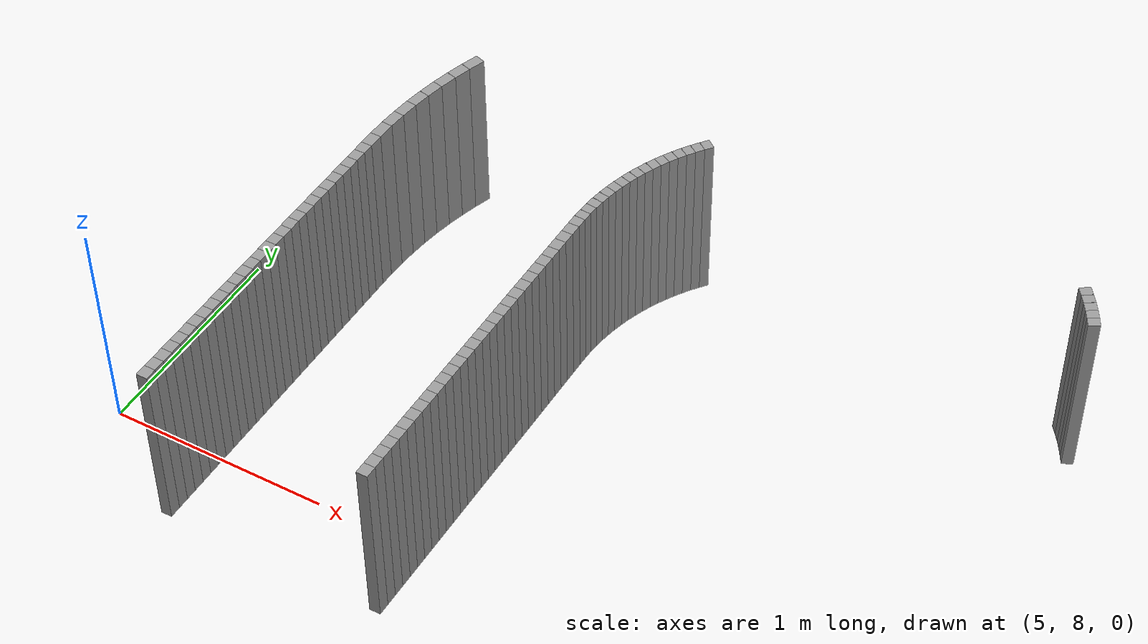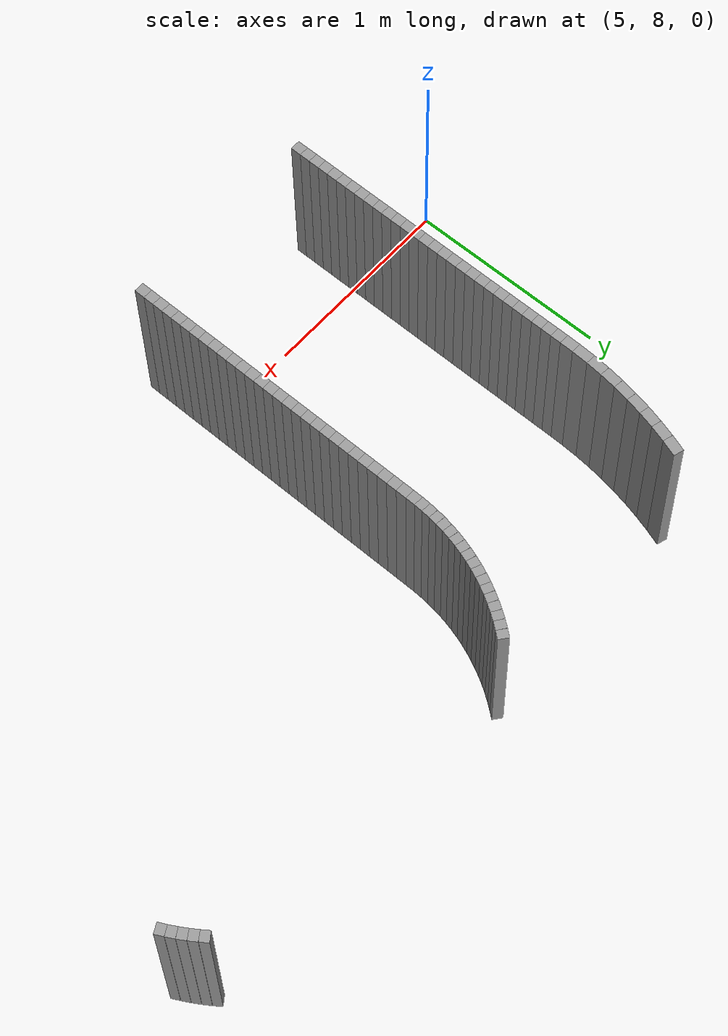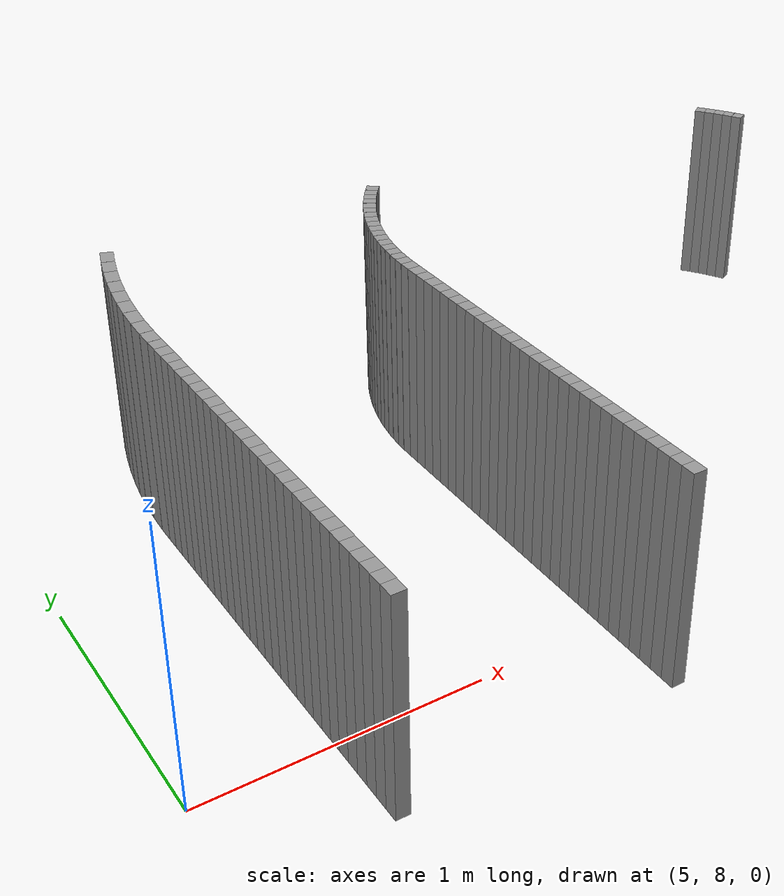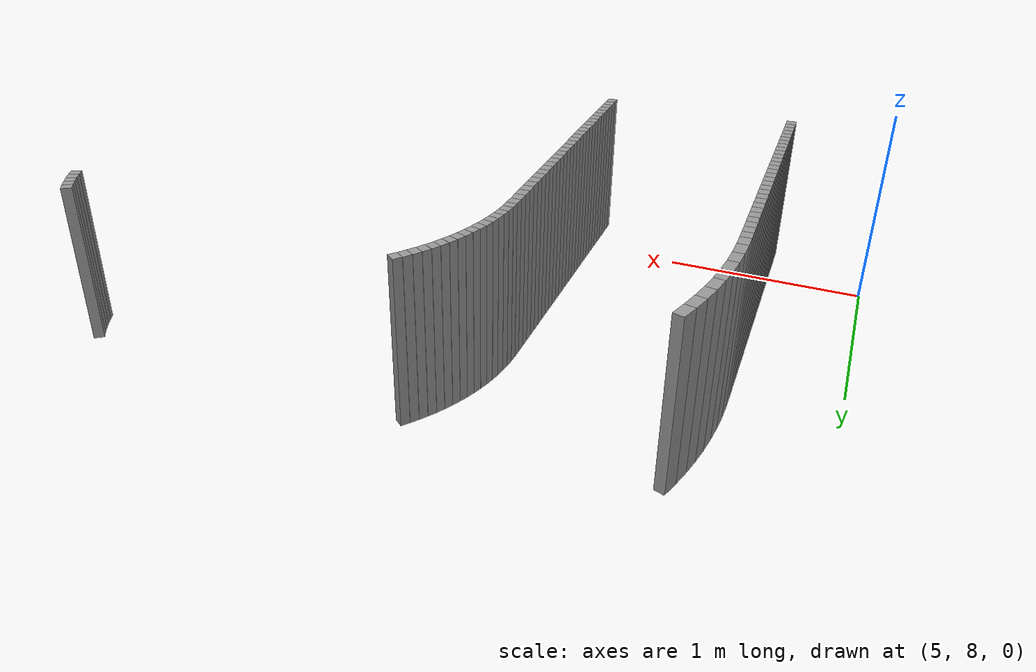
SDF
<sdf version="1.6">
 <model name="path_walls">
  <static>true</static>
  <model name="wall_left_228">
   <static>true</static>
   <pose>8.529585507723153 9.71877326772793 0.40 0 0 2.0480002741756937</pose>
   <link name="wall_link">
    <visual name="wall_visual">
     <geometry><box><size>0.042737418120576395 0.05 0.8</size></box></geometry>
     <material><ambient>0.3 0.3 0.3 1</ambient><diffuse>0.6 0.6 0.6 1</diffuse></material>
    </visual>
    <collision name="wall_collision">
     <geometry><box><size>0.042737418120576395 0.05 0.8</size></box></geometry>
    </collision>
   </link>
  </model>
  <model name="wall_left_229">
   <static>true</static>
   <pose>8.509209450462738 9.75633097246778 0.40 0 0 2.087767269790649</pose>
   <link name="wall_link">
    <visual name="wall_visual">
     <geometry><box><size>0.04273741812055642 0.05 0.8</size></box></geometry>
     <material><ambient>0.3 0.3 0.3 1</ambient><diffuse>0.6 0.6 0.6 1</diffuse></material>
    </visual>
    <collision name="wall_collision">
     <geometry><box><size>0.04273741812055642 0.05 0.8</size></box></geometry>
    </collision>
   </link>
  </model>
  <model name="wall_left_230">
   <static>true</static>
   <pose>8.487356339114202 9.793048902954027 0.40 0 0 2.1275342654057545</pose>
   <link name="wall_link">
    <visual name="wall_visual">
     <geometry><box><size>0.04273741812055286 0.05 0.8</size></box></geometry>
     <material><ambient>0.3 0.3 0.3 1</ambient><diffuse>0.6 0.6 0.6 1</diffuse></material>
    </visual>
    <collision name="wall_collision">
     <geometry><box><size>0.04273741812055286 0.05 0.8</size></box></geometry>
    </collision>
   </link>
  </model>
  <model name="wall_left_231">
   <static>true</static>
   <pose>8.464060727938387 9.828869000591375 0.40 0 0 2.1673012610208104</pose>
   <link name="wall_link">
    <visual name="wall_visual">
     <geometry><box><size>0.04273741812054675 0.05 0.8</size></box></geometry>
     <material><ambient>0.3 0.3 0.3 1</ambient><diffuse>0.6 0.6 0.6 1</diffuse></material>
    </visual>
    <collision name="wall_collision">
     <geometry><box><size>0.04273741812054675 0.05 0.8</size></box></geometry>
    </collision>
   </link>
  </model>
  <model name="wall_left_232">
   <static>true</static>
   <pose>8.439359452084862 9.863734626442819 0.40 0 0 2.207068256635829</pose>
   <link name="wall_link">
    <visual name="wall_visual">
     <geometry><box><size>0.04273741812057202 0.05 0.8</size></box></geometry>
     <material><ambient>0.3 0.3 0.3 1</ambient><diffuse>0.6 0.6 0.6 1</diffuse></material>
    </visual>
    <collision name="wall_collision">
     <geometry><box><size>0.04273741812057202 0.05 0.8</size></box></geometry>
    </collision>
   </link>
  </model>
  <model name="wall_left_278">
   <static>true</static>
   <pose>6.736864103651067 9.89759065078741 0.40 0 0 -2.246835252250915</pose>
   <link name="wall_link">
    <visual name="wall_visual">
     <geometry><box><size>0.04273741812054569 0.05 0.8</size></box></geometry>
     <material><ambient>0.3 0.3 0.3 1</ambient><diffuse>0.6 0.6 0.6 1</diffuse></material>
    </visual>
    <collision name="wall_collision">
     <geometry><box><size>0.04273741812054569 0.05 0.8</size></box></geometry>
    </collision>
   </link>
  </model>
  <model name="wall_left_279">
   <static>true</static>
   <pose>6.710796220914193 9.86373462644282 0.40 0 0 -2.207068256635847</pose>
   <link name="wall_link">
    <visual name="wall_visual">
     <geometry><box><size>0.04273741812057698 0.05 0.8</size></box></geometry>
     <material><ambient>0.3 0.3 0.3 1</ambient><diffuse>0.6 0.6 0.6 1</diffuse></material>
    </visual>
    <collision name="wall_collision">
     <geometry><box><size>0.04273741812057698 0.05 0.8</size></box></geometry>
    </collision>
   </link>
  </model>
  <model name="wall_left_280">
   <static>true</static>
   <pose>6.686094945060668 9.828869000591379 0.40 0 0 -2.1673012610208118</pose>
   <link name="wall_link">
    <visual name="wall_visual">
     <geometry><box><size>0.04273741812054035 0.05 0.8</size></box></geometry>
     <material><ambient>0.3 0.3 0.3 1</ambient><diffuse>0.6 0.6 0.6 1</diffuse></material>
    </visual>
    <collision name="wall_collision">
     <geometry><box><size>0.04273741812054035 0.05 0.8</size></box></geometry>
    </collision>
   </link>
  </model>
  <model name="wall_left_281">
   <static>true</static>
   <pose>6.662799333884852 9.793048902954027 0.40 0 0 -2.1275342654057465</pose>
   <link name="wall_link">
    <visual name="wall_visual">
     <geometry><box><size>0.042737418120565196 0.05 0.8</size></box></geometry>
     <material><ambient>0.3 0.3 0.3 1</ambient><diffuse>0.6 0.6 0.6 1</diffuse></material>
    </visual>
    <collision name="wall_collision">
     <geometry><box><size>0.042737418120565196 0.05 0.8</size></box></geometry>
    </collision>
   </link>
  </model>
  <model name="wall_left_282">
   <static>true</static>
   <pose>6.6409462225363125 9.756330972467776 0.40 0 0 -2.087767269790674</pose>
   <link name="wall_link">
    <visual name="wall_visual">
     <geometry><box><size>0.04273741812055091 0.05 0.8</size></box></geometry>
     <material><ambient>0.3 0.3 0.3 1</ambient><diffuse>0.6 0.6 0.6 1</diffuse></material>
    </visual>
    <collision name="wall_collision">
     <geometry><box><size>0.04273741812055091 0.05 0.8</size></box></geometry>
    </collision>
   </link>
  </model>
  <model name="wall_left_283">
   <static>true</static>
   <pose>6.620570165275902 9.718773267727936 0.40 0 0 -2.0480002741756422</pose>
   <link name="wall_link">
    <visual name="wall_visual">
     <geometry><box><size>0.04273741812056326 0.05 0.8</size></box></geometry>
     <material><ambient>0.3 0.3 0.3 1</ambient><diffuse>0.6 0.6 0.6 1</diffuse></material>
    </visual>
    <collision name="wall_collision">
     <geometry><box><size>0.04273741812056326 0.05 0.8</size></box></geometry>
    </collision>
   </link>
  </model>
  <model name="wall_left_284">
   <static>true</static>
   <pose>6.601703380838353 9.680435175185508 0.40 0 0 -2.008233278560592</pose>
   <link name="wall_link">
    <visual name="wall_visual">
     <geometry><box><size>0.04273741812055495 0.05 0.8</size></box></geometry>
     <material><ambient>0.3 0.3 0.3 1</ambient><diffuse>0.6 0.6 0.6 1</diffuse></material>
    </visual>
    <collision name="wall_collision">
     <geometry><box><size>0.04273741812055495 0.05 0.8</size></box></geometry>
    </collision>
   </link>
  </model>
  <model name="wall_left_285">
   <static>true</static>
   <pose>6.5843757014878435 9.641377315245023 0.40 0 0 -1.9684662829454904</pose>
   <link name="wall_link">
    <visual name="wall_visual">
     <geometry><box><size>0.04273741812055926 0.05 0.8</size></box></geometry>
     <material><ambient>0.3 0.3 0.3 1</ambient><diffuse>0.6 0.6 0.6 1</diffuse></material>
    </visual>
    <collision name="wall_collision">
     <geometry><box><size>0.04273741812055926 0.05 0.8</size></box></geometry>
    </collision>
   </link>
  </model>
  <model name="wall_left_286">
   <static>true</static>
   <pose>6.568614525847053 9.601661446411216 0.40 0 0 -1.9286992873304307</pose>
   <link name="wall_link">
    <visual name="wall_visual">
     <geometry><box><size>0.04273741812054045 0.05 0.8</size></box></geometry>
     <material><ambient>0.3 0.3 0.3 1</ambient><diffuse>0.6 0.6 0.6 1</diffuse></material>
    </visual>
    <collision name="wall_collision">
     <geometry><box><size>0.04273741812054045 0.05 0.8</size></box></geometry>
    </collision>
   </link>
  </model>
  <model name="wall_left_287">
   <static>true</static>
   <pose>6.554444775574304 9.561350367636116 0.40 0 0 -1.8889322917153735</pose>
   <link name="wall_link">
    <visual name="wall_visual">
     <geometry><box><size>0.04273741812056799 0.05 0.8</size></box></geometry>
     <material><ambient>0.3 0.3 0.3 1</ambient><diffuse>0.6 0.6 0.6 1</diffuse></material>
    </visual>
    <collision name="wall_collision">
     <geometry><box><size>0.04273741812056799 0.05 0.8</size></box></geometry>
    </collision>
   </link>
  </model>
  <model name="wall_left_288">
   <static>true</static>
   <pose>6.5418888559573 9.52050781902102 0.40 0 0 -1.849165296100335</pose>
   <link name="wall_link">
    <visual name="wall_visual">
     <geometry><box><size>0.042737418120560755 0.05 0.8</size></box></geometry>
     <material><ambient>0.3 0.3 0.3 1</ambient><diffuse>0.6 0.6 0.6 1</diffuse></material>
    </visual>
    <collision name="wall_collision">
     <geometry><box><size>0.042737418120560755 0.05 0.8</size></box></geometry>
    </collision>
   </link>
  </model>
  <model name="wall_left_289">
   <static>true</static>
   <pose>6.530966620485776 9.479198381030303 0.40 0 0 -1.8093983004852403</pose>
   <link name="wall_link">
    <visual name="wall_visual">
     <geometry><box><size>0.042737418120546496 0.05 0.8</size></box></geometry>
     <material><ambient>0.3 0.3 0.3 1</ambient><diffuse>0.6 0.6 0.6 1</diffuse></material>
    </visual>
    <collision name="wall_collision">
     <geometry><box><size>0.042737418120546496 0.05 0.8</size></box></geometry>
    </collision>
   </link>
  </model>
  <model name="wall_left_290">
   <static>true</static>
   <pose>6.521695339459022 9.437487372376381 0.40 0 0 -1.7696313048701957</pose>
   <link name="wall_link">
    <visual name="wall_visual">
     <geometry><box><size>0.042737418120566535 0.05 0.8</size></box></geometry>
     <material><ambient>0.3 0.3 0.3 1</ambient><diffuse>0.6 0.6 0.6 1</diffuse></material>
    </visual>
    <collision name="wall_collision">
     <geometry><box><size>0.042737418120566535 0.05 0.8</size></box></geometry>
    </collision>
   </link>
  </model>
  <model name="wall_left_291">
   <static>true</static>
   <pose>6.514089672678011 9.395440746737448 0.40 0 0 -1.7298643092551451</pose>
   <link name="wall_link">
    <visual name="wall_visual">
     <geometry><box><size>0.042737418120542846 0.05 0.8</size></box></geometry>
     <material><ambient>0.3 0.3 0.3 1</ambient><diffuse>0.6 0.6 0.6 1</diffuse></material>
    </visual>
    <collision name="wall_collision">
     <geometry><box><size>0.042737418120542846 0.05 0.8</size></box></geometry>
    </collision>
   </link>
  </model>
  <model name="wall_left_292">
   <static>true</static>
   <pose>6.508161646265236 9.353124988471126 0.40 0 0 -1.690097313640075</pose>
   <link name="wall_link">
    <visual name="wall_visual">
     <geometry><box><size>0.042737418120566015 0.05 0.8</size></box></geometry>
     <material><ambient>0.3 0.3 0.3 1</ambient><diffuse>0.6 0.6 0.6 1</diffuse></material>
    </visual>
    <collision name="wall_collision">
     <geometry><box><size>0.042737418120566015 0.05 0.8</size></box></geometry>
    </collision>
   </link>
  </model>
  <model name="wall_left_293">
   <static>true</static>
   <pose>6.5039206336489315 9.310607007489036 0.40 0 0 -1.650330318025032</pose>
   <link name="wall_link">
    <visual name="wall_visual">
     <geometry><box><size>0.042737418120559006 0.05 0.8</size></box></geometry>
     <material><ambient>0.3 0.3 0.3 1</ambient><diffuse>0.6 0.6 0.6 1</diffuse></material>
    </visual>
    <collision name="wall_collision">
     <geometry><box><size>0.042737418120559006 0.05 0.8</size></box></geometry>
    </collision>
   </link>
  </model>
  <model name="wall_left_294">
   <static>true</static>
   <pose>6.5013733407417655 9.267954033458503 0.40 0 0 -1.6105633224099325</pose>
   <link name="wall_link">
    <visual name="wall_visual">
     <geometry><box><size>0.042737418120544685 0.05 0.8</size></box></geometry>
     <material><ambient>0.3 0.3 0.3 1</ambient><diffuse>0.6 0.6 0.6 1</diffuse></material>
    </visual>
    <collision name="wall_collision">
     <geometry><box><size>0.042737418120544685 0.05 0.8</size></box></geometry>
    </collision>
   </link>
  </model>
  <model name="wall_left_295">
   <static>true</static>
   <pose>6.500261897668705 9.222569746770251 0.40 0 0 -1.5816935538542747</pose>
   <link name="wall_link">
    <visual name="wall_visual">
     <geometry><box><size>0.048067797563828306 0.05 0.8</size></box></geometry>
     <material><ambient>0.3 0.3 0.3 1</ambient><diffuse>0.6 0.6 0.6 1</diffuse></material>
    </visual>
    <collision name="wall_collision">
     <geometry><box><size>0.048067797563828306 0.05 0.8</size></box></geometry>
    </collision>
   </link>
  </model>
  <model name="wall_left_296">
   <static>true</static>
   <pose>6.5 9.171841040464699 0.40 0 0 -1.5707963267948966</pose>
   <link name="wall_link">
    <visual name="wall_visual">
     <geometry><box><size>0.053392469033882506 0.05 0.8</size></box></geometry>
     <material><ambient>0.3 0.3 0.3 1</ambient><diffuse>0.6 0.6 0.6 1</diffuse></material>
    </visual>
    <collision name="wall_collision">
     <geometry><box><size>0.053392469033882506 0.05 0.8</size></box></geometry>
    </collision>
   </link>
  </model>
  <model name="wall_left_297">
   <static>true</static>
   <pose>6.5 9.118448571430815 0.40 0 0 -1.5707963267948966</pose>
   <link name="wall_link">
    <visual name="wall_visual">
     <geometry><box><size>0.053392469033882506 0.05 0.8</size></box></geometry>
     <material><ambient>0.3 0.3 0.3 1</ambient><diffuse>0.6 0.6 0.6 1</diffuse></material>
    </visual>
    <collision name="wall_collision">
     <geometry><box><size>0.053392469033882506 0.05 0.8</size></box></geometry>
    </collision>
   </link>
  </model>
  <model name="wall_left_298">
   <static>true</static>
   <pose>6.5 9.065056102396934 0.40 0 0 -1.5707963267948966</pose>
   <link name="wall_link">
    <visual name="wall_visual">
     <geometry><box><size>0.053392469033882506 0.05 0.8</size></box></geometry>
     <material><ambient>0.3 0.3 0.3 1</ambient><diffuse>0.6 0.6 0.6 1</diffuse></material>
    </visual>
    <collision name="wall_collision">
     <geometry><box><size>0.053392469033882506 0.05 0.8</size></box></geometry>
    </collision>
   </link>
  </model>
  <model name="wall_left_299">
   <static>true</static>
   <pose>6.5 9.01166363336305 0.40 0 0 -1.5707963267948966</pose>
   <link name="wall_link">
    <visual name="wall_visual">
     <geometry><box><size>0.053392469033882506 0.05 0.8</size></box></geometry>
     <material><ambient>0.3 0.3 0.3 1</ambient><diffuse>0.6 0.6 0.6 1</diffuse></material>
    </visual>
    <collision name="wall_collision">
     <geometry><box><size>0.053392469033882506 0.05 0.8</size></box></geometry>
    </collision>
   </link>
  </model>
  <model name="wall_left_300">
   <static>true</static>
   <pose>6.5 8.958271164329169 0.40 0 0 -1.5707963267948966</pose>
   <link name="wall_link">
    <visual name="wall_visual">
     <geometry><box><size>0.05339246903388073 0.05 0.8</size></box></geometry>
     <material><ambient>0.3 0.3 0.3 1</ambient><diffuse>0.6 0.6 0.6 1</diffuse></material>
    </visual>
    <collision name="wall_collision">
     <geometry><box><size>0.05339246903388073 0.05 0.8</size></box></geometry>
    </collision>
   </link>
  </model>
  <model name="wall_left_301">
   <static>true</static>
   <pose>6.5 8.904878695295286 0.40 0 0 -1.5707963267948966</pose>
   <link name="wall_link">
    <visual name="wall_visual">
     <geometry><box><size>0.05339246903388428 0.05 0.8</size></box></geometry>
     <material><ambient>0.3 0.3 0.3 1</ambient><diffuse>0.6 0.6 0.6 1</diffuse></material>
    </visual>
    <collision name="wall_collision">
     <geometry><box><size>0.05339246903388428 0.05 0.8</size></box></geometry>
    </collision>
   </link>
  </model>
  <model name="wall_left_302">
   <static>true</static>
   <pose>6.5 8.851486226261404 0.40 0 0 -1.5707963267948966</pose>
   <link name="wall_link">
    <visual name="wall_visual">
     <geometry><box><size>0.05339246903388073 0.05 0.8</size></box></geometry>
     <material><ambient>0.3 0.3 0.3 1</ambient><diffuse>0.6 0.6 0.6 1</diffuse></material>
    </visual>
    <collision name="wall_collision">
     <geometry><box><size>0.05339246903388073 0.05 0.8</size></box></geometry>
    </collision>
   </link>
  </model>
  <model name="wall_left_303">
   <static>true</static>
   <pose>6.5 8.798093757227521 0.40 0 0 -1.5707963267948966</pose>
   <link name="wall_link">
    <visual name="wall_visual">
     <geometry><box><size>0.05339246903388428 0.05 0.8</size></box></geometry>
     <material><ambient>0.3 0.3 0.3 1</ambient><diffuse>0.6 0.6 0.6 1</diffuse></material>
    </visual>
    <collision name="wall_collision">
     <geometry><box><size>0.05339246903388428 0.05 0.8</size></box></geometry>
    </collision>
   </link>
  </model>
  <model name="wall_left_304">
   <static>true</static>
   <pose>6.5 8.744701288193639 0.40 0 0 -1.5707963267948966</pose>
   <link name="wall_link">
    <visual name="wall_visual">
     <geometry><box><size>0.05339246903388073 0.05 0.8</size></box></geometry>
     <material><ambient>0.3 0.3 0.3 1</ambient><diffuse>0.6 0.6 0.6 1</diffuse></material>
    </visual>
    <collision name="wall_collision">
     <geometry><box><size>0.05339246903388073 0.05 0.8</size></box></geometry>
    </collision>
   </link>
  </model>
  <model name="wall_left_305">
   <static>true</static>
   <pose>6.5 8.691308819159758 0.40 0 0 -1.5707963267948966</pose>
   <link name="wall_link">
    <visual name="wall_visual">
     <geometry><box><size>0.053392469033882506 0.05 0.8</size></box></geometry>
     <material><ambient>0.3 0.3 0.3 1</ambient><diffuse>0.6 0.6 0.6 1</diffuse></material>
    </visual>
    <collision name="wall_collision">
     <geometry><box><size>0.053392469033882506 0.05 0.8</size></box></geometry>
    </collision>
   </link>
  </model>
  <model name="wall_left_306">
   <static>true</static>
   <pose>6.5 8.637916350125874 0.40 0 0 -1.5707963267948966</pose>
   <link name="wall_link">
    <visual name="wall_visual">
     <geometry><box><size>0.053392469033882506 0.05 0.8</size></box></geometry>
     <material><ambient>0.3 0.3 0.3 1</ambient><diffuse>0.6 0.6 0.6 1</diffuse></material>
    </visual>
    <collision name="wall_collision">
     <geometry><box><size>0.053392469033882506 0.05 0.8</size></box></geometry>
    </collision>
   </link>
  </model>
  <model name="wall_left_307">
   <static>true</static>
   <pose>6.5 8.584523881091993 0.40 0 0 -1.5707963267948966</pose>
   <link name="wall_link">
    <visual name="wall_visual">
     <geometry><box><size>0.05339246903388073 0.05 0.8</size></box></geometry>
     <material><ambient>0.3 0.3 0.3 1</ambient><diffuse>0.6 0.6 0.6 1</diffuse></material>
    </visual>
    <collision name="wall_collision">
     <geometry><box><size>0.05339246903388073 0.05 0.8</size></box></geometry>
    </collision>
   </link>
  </model>
  <model name="wall_left_308">
   <static>true</static>
   <pose>6.5 8.53113141205811 0.40 0 0 -1.5707963267948966</pose>
   <link name="wall_link">
    <visual name="wall_visual">
     <geometry><box><size>0.05339246903388428 0.05 0.8</size></box></geometry>
     <material><ambient>0.3 0.3 0.3 1</ambient><diffuse>0.6 0.6 0.6 1</diffuse></material>
    </visual>
    <collision name="wall_collision">
     <geometry><box><size>0.05339246903388428 0.05 0.8</size></box></geometry>
    </collision>
   </link>
  </model>
  <model name="wall_left_309">
   <static>true</static>
   <pose>6.5 8.477738943024228 0.40 0 0 -1.5707963267948966</pose>
   <link name="wall_link">
    <visual name="wall_visual">
     <geometry><box><size>0.05339246903388073 0.05 0.8</size></box></geometry>
     <material><ambient>0.3 0.3 0.3 1</ambient><diffuse>0.6 0.6 0.6 1</diffuse></material>
    </visual>
    <collision name="wall_collision">
     <geometry><box><size>0.05339246903388073 0.05 0.8</size></box></geometry>
    </collision>
   </link>
  </model>
  <model name="wall_left_310">
   <static>true</static>
   <pose>6.5 8.424346473990346 0.40 0 0 -1.5707963267948966</pose>
   <link name="wall_link">
    <visual name="wall_visual">
     <geometry><box><size>0.05339246903388428 0.05 0.8</size></box></geometry>
     <material><ambient>0.3 0.3 0.3 1</ambient><diffuse>0.6 0.6 0.6 1</diffuse></material>
    </visual>
    <collision name="wall_collision">
     <geometry><box><size>0.05339246903388428 0.05 0.8</size></box></geometry>
    </collision>
   </link>
  </model>
  <model name="wall_left_311">
   <static>true</static>
   <pose>6.5 8.370954004956463 0.40 0 0 -1.5707963267948966</pose>
   <link name="wall_link">
    <visual name="wall_visual">
     <geometry><box><size>0.05339246903388073 0.05 0.8</size></box></geometry>
     <material><ambient>0.3 0.3 0.3 1</ambient><diffuse>0.6 0.6 0.6 1</diffuse></material>
    </visual>
    <collision name="wall_collision">
     <geometry><box><size>0.05339246903388073 0.05 0.8</size></box></geometry>
    </collision>
   </link>
  </model>
  <model name="wall_left_312">
   <static>true</static>
   <pose>6.5 8.31756153592258 0.40 0 0 -1.5707963267948966</pose>
   <link name="wall_link">
    <visual name="wall_visual">
     <geometry><box><size>0.05339246903388428 0.05 0.8</size></box></geometry>
     <material><ambient>0.3 0.3 0.3 1</ambient><diffuse>0.6 0.6 0.6 1</diffuse></material>
    </visual>
    <collision name="wall_collision">
     <geometry><box><size>0.05339246903388428 0.05 0.8</size></box></geometry>
    </collision>
   </link>
  </model>
  <model name="wall_left_313">
   <static>true</static>
   <pose>6.5 8.264169066888698 0.40 0 0 -1.5707963267948966</pose>
   <link name="wall_link">
    <visual name="wall_visual">
     <geometry><box><size>0.05339246903388073 0.05 0.8</size></box></geometry>
     <material><ambient>0.3 0.3 0.3 1</ambient><diffuse>0.6 0.6 0.6 1</diffuse></material>
    </visual>
    <collision name="wall_collision">
     <geometry><box><size>0.05339246903388073 0.05 0.8</size></box></geometry>
    </collision>
   </link>
  </model>
  <model name="wall_left_314">
   <static>true</static>
   <pose>6.5 8.210776597854817 0.40 0 0 -1.5707963267948966</pose>
   <link name="wall_link">
    <visual name="wall_visual">
     <geometry><box><size>0.05339246903388073 0.05 0.8</size></box></geometry>
     <material><ambient>0.3 0.3 0.3 1</ambient><diffuse>0.6 0.6 0.6 1</diffuse></material>
    </visual>
    <collision name="wall_collision">
     <geometry><box><size>0.05339246903388073 0.05 0.8</size></box></geometry>
    </collision>
   </link>
  </model>
  <model name="wall_left_315">
   <static>true</static>
   <pose>6.5 8.157384128820935 0.40 0 0 -1.5707963267948966</pose>
   <link name="wall_link">
    <visual name="wall_visual">
     <geometry><box><size>0.05339246903388428 0.05 0.8</size></box></geometry>
     <material><ambient>0.3 0.3 0.3 1</ambient><diffuse>0.6 0.6 0.6 1</diffuse></material>
    </visual>
    <collision name="wall_collision">
     <geometry><box><size>0.05339246903388428 0.05 0.8</size></box></geometry>
    </collision>
   </link>
  </model>
  <model name="wall_left_316">
   <static>true</static>
   <pose>6.5 8.103991659787052 0.40 0 0 -1.5707963267948966</pose>
   <link name="wall_link">
    <visual name="wall_visual">
     <geometry><box><size>0.05339246903388073 0.05 0.8</size></box></geometry>
     <material><ambient>0.3 0.3 0.3 1</ambient><diffuse>0.6 0.6 0.6 1</diffuse></material>
    </visual>
    <collision name="wall_collision">
     <geometry><box><size>0.05339246903388073 0.05 0.8</size></box></geometry>
    </collision>
   </link>
  </model>
  <model name="wall_left_317">
   <static>true</static>
   <pose>6.5 8.05059919075317 0.40 0 0 -1.5707963267948966</pose>
   <link name="wall_link">
    <visual name="wall_visual">
     <geometry><box><size>0.05339246903388428 0.05 0.8</size></box></geometry>
     <material><ambient>0.3 0.3 0.3 1</ambient><diffuse>0.6 0.6 0.6 1</diffuse></material>
    </visual>
    <collision name="wall_collision">
     <geometry><box><size>0.05339246903388428 0.05 0.8</size></box></geometry>
    </collision>
   </link>
  </model>
  <model name="wall_left_318">
   <static>true</static>
   <pose>6.5 7.997206721719287 0.40 0 0 -1.5707963267948966</pose>
   <link name="wall_link">
    <visual name="wall_visual">
     <geometry><box><size>0.05339246903388162 0.05 0.8</size></box></geometry>
     <material><ambient>0.3 0.3 0.3 1</ambient><diffuse>0.6 0.6 0.6 1</diffuse></material>
    </visual>
    <collision name="wall_collision">
     <geometry><box><size>0.05339246903388162 0.05 0.8</size></box></geometry>
    </collision>
   </link>
  </model>
  <model name="wall_left_319">
   <static>true</static>
   <pose>6.5 7.943814252685405 0.40 0 0 -1.5707963267948966</pose>
   <link name="wall_link">
    <visual name="wall_visual">
     <geometry><box><size>0.053392469033883394 0.05 0.8</size></box></geometry>
     <material><ambient>0.3 0.3 0.3 1</ambient><diffuse>0.6 0.6 0.6 1</diffuse></material>
    </visual>
    <collision name="wall_collision">
     <geometry><box><size>0.053392469033883394 0.05 0.8</size></box></geometry>
    </collision>
   </link>
  </model>
  <model name="wall_left_320">
   <static>true</static>
   <pose>6.5 7.890421783651522 0.40 0 0 -1.5707963267948966</pose>
   <link name="wall_link">
    <visual name="wall_visual">
     <geometry><box><size>0.05339246903388162 0.05 0.8</size></box></geometry>
     <material><ambient>0.3 0.3 0.3 1</ambient><diffuse>0.6 0.6 0.6 1</diffuse></material>
    </visual>
    <collision name="wall_collision">
     <geometry><box><size>0.05339246903388162 0.05 0.8</size></box></geometry>
    </collision>
   </link>
  </model>
  <model name="wall_left_321">
   <static>true</static>
   <pose>6.5 7.83702931461764 0.40 0 0 -1.5707963267948966</pose>
   <link name="wall_link">
    <visual name="wall_visual">
     <geometry><box><size>0.05339246903388162 0.05 0.8</size></box></geometry>
     <material><ambient>0.3 0.3 0.3 1</ambient><diffuse>0.6 0.6 0.6 1</diffuse></material>
    </visual>
    <collision name="wall_collision">
     <geometry><box><size>0.05339246903388162 0.05 0.8</size></box></geometry>
    </collision>
   </link>
  </model>
  <model name="wall_left_322">
   <static>true</static>
   <pose>6.5 7.783636845583759 0.40 0 0 -1.5707963267948966</pose>
   <link name="wall_link">
    <visual name="wall_visual">
     <geometry><box><size>0.05339246903388162 0.05 0.8</size></box></geometry>
     <material><ambient>0.3 0.3 0.3 1</ambient><diffuse>0.6 0.6 0.6 1</diffuse></material>
    </visual>
    <collision name="wall_collision">
     <geometry><box><size>0.05339246903388162 0.05 0.8</size></box></geometry>
    </collision>
   </link>
  </model>
  <model name="wall_left_323">
   <static>true</static>
   <pose>6.5 7.7302443765498765 0.40 0 0 -1.5707963267948966</pose>
   <link name="wall_link">
    <visual name="wall_visual">
     <geometry><box><size>0.053392469033882506 0.05 0.8</size></box></geometry>
     <material><ambient>0.3 0.3 0.3 1</ambient><diffuse>0.6 0.6 0.6 1</diffuse></material>
    </visual>
    <collision name="wall_collision">
     <geometry><box><size>0.053392469033882506 0.05 0.8</size></box></geometry>
    </collision>
   </link>
  </model>
  <model name="wall_left_324">
   <static>true</static>
   <pose>6.5 7.676851907515994 0.40 0 0 -1.5707963267948966</pose>
   <link name="wall_link">
    <visual name="wall_visual">
     <geometry><box><size>0.053392469033882506 0.05 0.8</size></box></geometry>
     <material><ambient>0.3 0.3 0.3 1</ambient><diffuse>0.6 0.6 0.6 1</diffuse></material>
    </visual>
    <collision name="wall_collision">
     <geometry><box><size>0.053392469033882506 0.05 0.8</size></box></geometry>
    </collision>
   </link>
  </model>
  <model name="wall_right_287">
   <static>true</static>
   <pose>5.604812395010352 9.8740851440811 0.40 0 0 -1.8889322917153692</pose>
   <link name="wall_link">
    <visual name="wall_visual">
     <geometry><box><size>0.08250179345068691 0.05 0.8</size></box></geometry>
     <material><ambient>0.3 0.3 0.3 1</ambient><diffuse>0.6 0.6 0.6 1</diffuse></material>
    </visual>
    <collision name="wall_collision">
     <geometry><box><size>0.08250179345068691 0.05 0.8</size></box></geometry>
    </collision>
   </link>
  </model>
  <model name="wall_right_288">
   <static>true</static>
   <pose>5.580574012525403 9.795241272410223 0.40 0 0 -1.849165296100333</pose>
   <link name="wall_link">
    <visual name="wall_visual">
     <geometry><box><size>0.08250179345068924 0.05 0.8</size></box></geometry>
     <material><ambient>0.3 0.3 0.3 1</ambient><diffuse>0.6 0.6 0.6 1</diffuse></material>
    </visual>
    <collision name="wall_collision">
     <geometry><box><size>0.08250179345068924 0.05 0.8</size></box></geometry>
    </collision>
   </link>
  </model>
  <model name="wall_right_289">
   <static>true</static>
   <pose>5.559489350547231 9.715496101303701 0.40 0 0 -1.8093983004852632</pose>
   <link name="wall_link">
    <visual name="wall_visual">
     <geometry><box><size>0.08250179345070481 0.05 0.8</size></box></geometry>
     <material><ambient>0.3 0.3 0.3 1</ambient><diffuse>0.6 0.6 0.6 1</diffuse></material>
    </visual>
    <collision name="wall_collision">
     <geometry><box><size>0.08250179345070481 0.05 0.8</size></box></geometry>
    </collision>
   </link>
  </model>
  <model name="wall_right_290">
   <static>true</static>
   <pose>5.541591748260286 9.634975724268317 0.40 0 0 -1.7696313048701848</pose>
   <link name="wall_link">
    <visual name="wall_visual">
     <geometry><box><size>0.08250179345069021 0.05 0.8</size></box></geometry>
     <material><ambient>0.3 0.3 0.3 1</ambient><diffuse>0.6 0.6 0.6 1</diffuse></material>
    </visual>
    <collision name="wall_collision">
     <geometry><box><size>0.08250179345069021 0.05 0.8</size></box></geometry>
    </collision>
   </link>
  </model>
  <model name="wall_right_291">
   <static>true</static>
   <pose>5.526909505452551 9.553807460570756 0.40 0 0 -1.7298643092551516</pose>
   <link name="wall_link">
    <visual name="wall_visual">
     <geometry><box><size>0.08250179345070568 0.05 0.8</size></box></geometry>
     <material><ambient>0.3 0.3 0.3 1</ambient><diffuse>0.6 0.6 0.6 1</diffuse></material>
    </visual>
    <collision name="wall_collision">
     <geometry><box><size>0.08250179345070568 0.05 0.8</size></box></geometry>
    </collision>
   </link>
  </model>
  <model name="wall_right_292">
   <static>true</static>
   <pose>5.5154658377677706 9.472119653919687 0.40 0 0 -1.690097313640076</pose>
   <link name="wall_link">
    <visual name="wall_visual">
     <geometry><box><size>0.08250179345068603 0.05 0.8</size></box></geometry>
     <material><ambient>0.3 0.3 0.3 1</ambient><diffuse>0.6 0.6 0.6 1</diffuse></material>
    </visual>
    <collision name="wall_collision">
     <geometry><box><size>0.08250179345068603 0.05 0.8</size></box></geometry>
    </collision>
   </link>
  </model>
  <model name="wall_right_293">
   <static>true</static>
   <pose>5.507278839996751 9.390041469527986 0.40 0 0 -1.6503303180250262</pose>
   <link name="wall_link">
    <visual name="wall_visual">
     <geometry><box><size>0.08250179345069267 0.05 0.8</size></box></geometry>
     <material><ambient>0.3 0.3 0.3 1</ambient><diffuse>0.6 0.6 0.6 1</diffuse></material>
    </visual>
    <collision name="wall_collision">
     <geometry><box><size>0.08250179345069267 0.05 0.8</size></box></geometry>
    </collision>
   </link>
  </model>
  <model name="wall_right_294">
   <static>true</static>
   <pose>5.502361457465766 9.30770268987595 0.40 0 0 -1.6105633224099467</pose>
   <link name="wall_link">
    <visual name="wall_visual">
     <geometry><box><size>0.08250179345071212 0.05 0.8</size></box></geometry>
     <material><ambient>0.3 0.3 0.3 1</ambient><diffuse>0.6 0.6 0.6 1</diffuse></material>
    </visual>
    <collision name="wall_collision">
     <geometry><box><size>0.08250179345071212 0.05 0.8</size></box></geometry>
    </collision>
   </link>
  </model>
  <model name="wall_right_295">
   <static>true</static>
   <pose>5.500360732783672 9.23251084060278 0.40 0 0 -1.5814139708753514</pose>
   <link name="wall_link">
    <visual name="wall_visual">
     <geometry><box><size>0.06795096141056911 0.05 0.8</size></box></geometry>
     <material><ambient>0.3 0.3 0.3 1</ambient><diffuse>0.6 0.6 0.6 1</diffuse></material>
    </visual>
    <collision name="wall_collision">
     <geometry><box><size>0.06795096141056911 0.05 0.8</size></box></geometry>
    </collision>
   </link>
  </model>
  <model name="wall_right_296">
   <static>true</static>
   <pose>5.5 9.171841040464699 0.40 0 0 -1.5707963267948966</pose>
   <link name="wall_link">
    <visual name="wall_visual">
     <geometry><box><size>0.053392469033882506 0.05 0.8</size></box></geometry>
     <material><ambient>0.3 0.3 0.3 1</ambient><diffuse>0.6 0.6 0.6 1</diffuse></material>
    </visual>
    <collision name="wall_collision">
     <geometry><box><size>0.053392469033882506 0.05 0.8</size></box></geometry>
    </collision>
   </link>
  </model>
  <model name="wall_right_297">
   <static>true</static>
   <pose>5.5 9.118448571430815 0.40 0 0 -1.5707963267948966</pose>
   <link name="wall_link">
    <visual name="wall_visual">
     <geometry><box><size>0.053392469033882506 0.05 0.8</size></box></geometry>
     <material><ambient>0.3 0.3 0.3 1</ambient><diffuse>0.6 0.6 0.6 1</diffuse></material>
    </visual>
    <collision name="wall_collision">
     <geometry><box><size>0.053392469033882506 0.05 0.8</size></box></geometry>
    </collision>
   </link>
  </model>
  <model name="wall_right_298">
   <static>true</static>
   <pose>5.5 9.065056102396934 0.40 0 0 -1.5707963267948966</pose>
   <link name="wall_link">
    <visual name="wall_visual">
     <geometry><box><size>0.053392469033882506 0.05 0.8</size></box></geometry>
     <material><ambient>0.3 0.3 0.3 1</ambient><diffuse>0.6 0.6 0.6 1</diffuse></material>
    </visual>
    <collision name="wall_collision">
     <geometry><box><size>0.053392469033882506 0.05 0.8</size></box></geometry>
    </collision>
   </link>
  </model>
  <model name="wall_right_299">
   <static>true</static>
   <pose>5.5 9.01166363336305 0.40 0 0 -1.5707963267948966</pose>
   <link name="wall_link">
    <visual name="wall_visual">
     <geometry><box><size>0.053392469033882506 0.05 0.8</size></box></geometry>
     <material><ambient>0.3 0.3 0.3 1</ambient><diffuse>0.6 0.6 0.6 1</diffuse></material>
    </visual>
    <collision name="wall_collision">
     <geometry><box><size>0.053392469033882506 0.05 0.8</size></box></geometry>
    </collision>
   </link>
  </model>
  <model name="wall_right_300">
   <static>true</static>
   <pose>5.5 8.958271164329169 0.40 0 0 -1.5707963267948966</pose>
   <link name="wall_link">
    <visual name="wall_visual">
     <geometry><box><size>0.05339246903388073 0.05 0.8</size></box></geometry>
     <material><ambient>0.3 0.3 0.3 1</ambient><diffuse>0.6 0.6 0.6 1</diffuse></material>
    </visual>
    <collision name="wall_collision">
     <geometry><box><size>0.05339246903388073 0.05 0.8</size></box></geometry>
    </collision>
   </link>
  </model>
  <model name="wall_right_301">
   <static>true</static>
   <pose>5.5 8.904878695295286 0.40 0 0 -1.5707963267948966</pose>
   <link name="wall_link">
    <visual name="wall_visual">
     <geometry><box><size>0.05339246903388428 0.05 0.8</size></box></geometry>
     <material><ambient>0.3 0.3 0.3 1</ambient><diffuse>0.6 0.6 0.6 1</diffuse></material>
    </visual>
    <collision name="wall_collision">
     <geometry><box><size>0.05339246903388428 0.05 0.8</size></box></geometry>
    </collision>
   </link>
  </model>
  <model name="wall_right_302">
   <static>true</static>
   <pose>5.5 8.851486226261404 0.40 0 0 -1.5707963267948966</pose>
   <link name="wall_link">
    <visual name="wall_visual">
     <geometry><box><size>0.05339246903388073 0.05 0.8</size></box></geometry>
     <material><ambient>0.3 0.3 0.3 1</ambient><diffuse>0.6 0.6 0.6 1</diffuse></material>
    </visual>
    <collision name="wall_collision">
     <geometry><box><size>0.05339246903388073 0.05 0.8</size></box></geometry>
    </collision>
   </link>
  </model>
  <model name="wall_right_303">
   <static>true</static>
   <pose>5.5 8.798093757227521 0.40 0 0 -1.5707963267948966</pose>
   <link name="wall_link">
    <visual name="wall_visual">
     <geometry><box><size>0.05339246903388428 0.05 0.8</size></box></geometry>
     <material><ambient>0.3 0.3 0.3 1</ambient><diffuse>0.6 0.6 0.6 1</diffuse></material>
    </visual>
    <collision name="wall_collision">
     <geometry><box><size>0.05339246903388428 0.05 0.8</size></box></geometry>
    </collision>
   </link>
  </model>
  <model name="wall_right_304">
   <static>true</static>
   <pose>5.5 8.744701288193639 0.40 0 0 -1.5707963267948966</pose>
   <link name="wall_link">
    <visual name="wall_visual">
     <geometry><box><size>0.05339246903388073 0.05 0.8</size></box></geometry>
     <material><ambient>0.3 0.3 0.3 1</ambient><diffuse>0.6 0.6 0.6 1</diffuse></material>
    </visual>
    <collision name="wall_collision">
     <geometry><box><size>0.05339246903388073 0.05 0.8</size></box></geometry>
    </collision>
   </link>
  </model>
  <model name="wall_right_305">
   <static>true</static>
   <pose>5.5 8.691308819159758 0.40 0 0 -1.5707963267948966</pose>
   <link name="wall_link">
    <visual name="wall_visual">
     <geometry><box><size>0.053392469033882506 0.05 0.8</size></box></geometry>
     <material><ambient>0.3 0.3 0.3 1</ambient><diffuse>0.6 0.6 0.6 1</diffuse></material>
    </visual>
    <collision name="wall_collision">
     <geometry><box><size>0.053392469033882506 0.05 0.8</size></box></geometry>
    </collision>
   </link>
  </model>
  <model name="wall_right_306">
   <static>true</static>
   <pose>5.5 8.637916350125874 0.40 0 0 -1.5707963267948966</pose>
   <link name="wall_link">
    <visual name="wall_visual">
     <geometry><box><size>0.053392469033882506 0.05 0.8</size></box></geometry>
     <material><ambient>0.3 0.3 0.3 1</ambient><diffuse>0.6 0.6 0.6 1</diffuse></material>
    </visual>
    <collision name="wall_collision">
     <geometry><box><size>0.053392469033882506 0.05 0.8</size></box></geometry>
    </collision>
   </link>
  </model>
  <model name="wall_right_307">
   <static>true</static>
   <pose>5.5 8.584523881091993 0.40 0 0 -1.5707963267948966</pose>
   <link name="wall_link">
    <visual name="wall_visual">
     <geometry><box><size>0.05339246903388073 0.05 0.8</size></box></geometry>
     <material><ambient>0.3 0.3 0.3 1</ambient><diffuse>0.6 0.6 0.6 1</diffuse></material>
    </visual>
    <collision name="wall_collision">
     <geometry><box><size>0.05339246903388073 0.05 0.8</size></box></geometry>
    </collision>
   </link>
  </model>
  <model name="wall_right_308">
   <static>true</static>
   <pose>5.5 8.53113141205811 0.40 0 0 -1.5707963267948966</pose>
   <link name="wall_link">
    <visual name="wall_visual">
     <geometry><box><size>0.05339246903388428 0.05 0.8</size></box></geometry>
     <material><ambient>0.3 0.3 0.3 1</ambient><diffuse>0.6 0.6 0.6 1</diffuse></material>
    </visual>
    <collision name="wall_collision">
     <geometry><box><size>0.05339246903388428 0.05 0.8</size></box></geometry>
    </collision>
   </link>
  </model>
  <model name="wall_right_309">
   <static>true</static>
   <pose>5.5 8.477738943024228 0.40 0 0 -1.5707963267948966</pose>
   <link name="wall_link">
    <visual name="wall_visual">
     <geometry><box><size>0.05339246903388073 0.05 0.8</size></box></geometry>
     <material><ambient>0.3 0.3 0.3 1</ambient><diffuse>0.6 0.6 0.6 1</diffuse></material>
    </visual>
    <collision name="wall_collision">
     <geometry><box><size>0.05339246903388073 0.05 0.8</size></box></geometry>
    </collision>
   </link>
  </model>
  <model name="wall_right_310">
   <static>true</static>
   <pose>5.5 8.424346473990346 0.40 0 0 -1.5707963267948966</pose>
   <link name="wall_link">
    <visual name="wall_visual">
     <geometry><box><size>0.05339246903388428 0.05 0.8</size></box></geometry>
     <material><ambient>0.3 0.3 0.3 1</ambient><diffuse>0.6 0.6 0.6 1</diffuse></material>
    </visual>
    <collision name="wall_collision">
     <geometry><box><size>0.05339246903388428 0.05 0.8</size></box></geometry>
    </collision>
   </link>
  </model>
  <model name="wall_right_311">
   <static>true</static>
   <pose>5.5 8.370954004956463 0.40 0 0 -1.5707963267948966</pose>
   <link name="wall_link">
    <visual name="wall_visual">
     <geometry><box><size>0.05339246903388073 0.05 0.8</size></box></geometry>
     <material><ambient>0.3 0.3 0.3 1</ambient><diffuse>0.6 0.6 0.6 1</diffuse></material>
    </visual>
    <collision name="wall_collision">
     <geometry><box><size>0.05339246903388073 0.05 0.8</size></box></geometry>
    </collision>
   </link>
  </model>
  <model name="wall_right_312">
   <static>true</static>
   <pose>5.5 8.31756153592258 0.40 0 0 -1.5707963267948966</pose>
   <link name="wall_link">
    <visual name="wall_visual">
     <geometry><box><size>0.05339246903388428 0.05 0.8</size></box></geometry>
     <material><ambient>0.3 0.3 0.3 1</ambient><diffuse>0.6 0.6 0.6 1</diffuse></material>
    </visual>
    <collision name="wall_collision">
     <geometry><box><size>0.05339246903388428 0.05 0.8</size></box></geometry>
    </collision>
   </link>
  </model>
  <model name="wall_right_313">
   <static>true</static>
   <pose>5.5 8.264169066888698 0.40 0 0 -1.5707963267948966</pose>
   <link name="wall_link">
    <visual name="wall_visual">
     <geometry><box><size>0.05339246903388073 0.05 0.8</size></box></geometry>
     <material><ambient>0.3 0.3 0.3 1</ambient><diffuse>0.6 0.6 0.6 1</diffuse></material>
    </visual>
    <collision name="wall_collision">
     <geometry><box><size>0.05339246903388073 0.05 0.8</size></box></geometry>
    </collision>
   </link>
  </model>
  <model name="wall_right_314">
   <static>true</static>
   <pose>5.5 8.210776597854817 0.40 0 0 -1.5707963267948966</pose>
   <link name="wall_link">
    <visual name="wall_visual">
     <geometry><box><size>0.05339246903388073 0.05 0.8</size></box></geometry>
     <material><ambient>0.3 0.3 0.3 1</ambient><diffuse>0.6 0.6 0.6 1</diffuse></material>
    </visual>
    <collision name="wall_collision">
     <geometry><box><size>0.05339246903388073 0.05 0.8</size></box></geometry>
    </collision>
   </link>
  </model>
  <model name="wall_right_315">
   <static>true</static>
   <pose>5.5 8.157384128820935 0.40 0 0 -1.5707963267948966</pose>
   <link name="wall_link">
    <visual name="wall_visual">
     <geometry><box><size>0.05339246903388428 0.05 0.8</size></box></geometry>
     <material><ambient>0.3 0.3 0.3 1</ambient><diffuse>0.6 0.6 0.6 1</diffuse></material>
    </visual>
    <collision name="wall_collision">
     <geometry><box><size>0.05339246903388428 0.05 0.8</size></box></geometry>
    </collision>
   </link>
  </model>
  <model name="wall_right_316">
   <static>true</static>
   <pose>5.5 8.103991659787052 0.40 0 0 -1.5707963267948966</pose>
   <link name="wall_link">
    <visual name="wall_visual">
     <geometry><box><size>0.05339246903388073 0.05 0.8</size></box></geometry>
     <material><ambient>0.3 0.3 0.3 1</ambient><diffuse>0.6 0.6 0.6 1</diffuse></material>
    </visual>
    <collision name="wall_collision">
     <geometry><box><size>0.05339246903388073 0.05 0.8</size></box></geometry>
    </collision>
   </link>
  </model>
  <model name="wall_right_317">
   <static>true</static>
   <pose>5.5 8.05059919075317 0.40 0 0 -1.5707963267948966</pose>
   <link name="wall_link">
    <visual name="wall_visual">
     <geometry><box><size>0.05339246903388428 0.05 0.8</size></box></geometry>
     <material><ambient>0.3 0.3 0.3 1</ambient><diffuse>0.6 0.6 0.6 1</diffuse></material>
    </visual>
    <collision name="wall_collision">
     <geometry><box><size>0.05339246903388428 0.05 0.8</size></box></geometry>
    </collision>
   </link>
  </model>
  <model name="wall_right_318">
   <static>true</static>
   <pose>5.5 7.997206721719287 0.40 0 0 -1.5707963267948966</pose>
   <link name="wall_link">
    <visual name="wall_visual">
     <geometry><box><size>0.05339246903388162 0.05 0.8</size></box></geometry>
     <material><ambient>0.3 0.3 0.3 1</ambient><diffuse>0.6 0.6 0.6 1</diffuse></material>
    </visual>
    <collision name="wall_collision">
     <geometry><box><size>0.05339246903388162 0.05 0.8</size></box></geometry>
    </collision>
   </link>
  </model>
  <model name="wall_right_319">
   <static>true</static>
   <pose>5.5 7.943814252685405 0.40 0 0 -1.5707963267948966</pose>
   <link name="wall_link">
    <visual name="wall_visual">
     <geometry><box><size>0.053392469033883394 0.05 0.8</size></box></geometry>
     <material><ambient>0.3 0.3 0.3 1</ambient><diffuse>0.6 0.6 0.6 1</diffuse></material>
    </visual>
    <collision name="wall_collision">
     <geometry><box><size>0.053392469033883394 0.05 0.8</size></box></geometry>
    </collision>
   </link>
  </model>
  <model name="wall_right_320">
   <static>true</static>
   <pose>5.5 7.890421783651522 0.40 0 0 -1.5707963267948966</pose>
   <link name="wall_link">
    <visual name="wall_visual">
     <geometry><box><size>0.05339246903388162 0.05 0.8</size></box></geometry>
     <material><ambient>0.3 0.3 0.3 1</ambient><diffuse>0.6 0.6 0.6 1</diffuse></material>
    </visual>
    <collision name="wall_collision">
     <geometry><box><size>0.05339246903388162 0.05 0.8</size></box></geometry>
    </collision>
   </link>
  </model>
  <model name="wall_right_321">
   <static>true</static>
   <pose>5.5 7.83702931461764 0.40 0 0 -1.5707963267948966</pose>
   <link name="wall_link">
    <visual name="wall_visual">
     <geometry><box><size>0.05339246903388162 0.05 0.8</size></box></geometry>
     <material><ambient>0.3 0.3 0.3 1</ambient><diffuse>0.6 0.6 0.6 1</diffuse></material>
    </visual>
    <collision name="wall_collision">
     <geometry><box><size>0.05339246903388162 0.05 0.8</size></box></geometry>
    </collision>
   </link>
  </model>
  <model name="wall_right_322">
   <static>true</static>
   <pose>5.5 7.783636845583759 0.40 0 0 -1.5707963267948966</pose>
   <link name="wall_link">
    <visual name="wall_visual">
     <geometry><box><size>0.05339246903388162 0.05 0.8</size></box></geometry>
     <material><ambient>0.3 0.3 0.3 1</ambient><diffuse>0.6 0.6 0.6 1</diffuse></material>
    </visual>
    <collision name="wall_collision">
     <geometry><box><size>0.05339246903388162 0.05 0.8</size></box></geometry>
    </collision>
   </link>
  </model>
  <model name="wall_right_323">
   <static>true</static>
   <pose>5.5 7.7302443765498765 0.40 0 0 -1.5707963267948966</pose>
   <link name="wall_link">
    <visual name="wall_visual">
     <geometry><box><size>0.053392469033882506 0.05 0.8</size></box></geometry>
     <material><ambient>0.3 0.3 0.3 1</ambient><diffuse>0.6 0.6 0.6 1</diffuse></material>
    </visual>
    <collision name="wall_collision">
     <geometry><box><size>0.053392469033882506 0.05 0.8</size></box></geometry>
    </collision>
   </link>
  </model>
  <model name="wall_right_324">
   <static>true</static>
   <pose>5.5 7.676851907515994 0.40 0 0 -1.5707963267948966</pose>
   <link name="wall_link">
    <visual name="wall_visual">
     <geometry><box><size>0.053392469033882506 0.05 0.8</size></box></geometry>
     <material><ambient>0.3 0.3 0.3 1</ambient><diffuse>0.6 0.6 0.6 1</diffuse></material>
    </visual>
    <collision name="wall_collision">
     <geometry><box><size>0.053392469033882506 0.05 0.8</size></box></geometry>
    </collision>
   </link>
  </model>
 </model>
</sdf>
